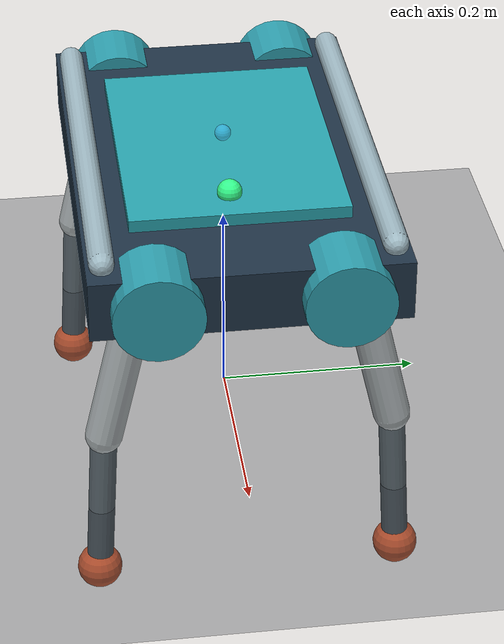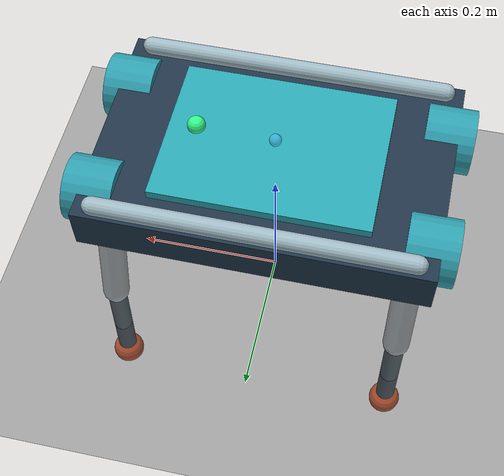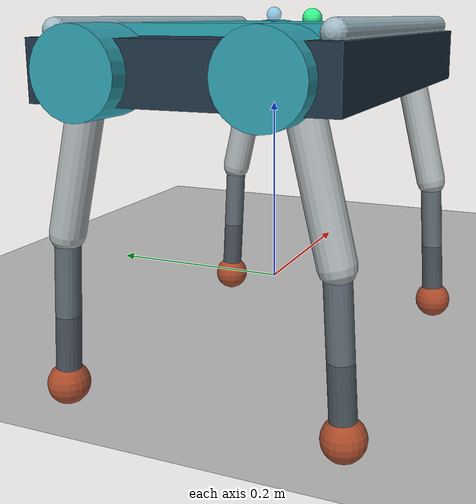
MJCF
<mujoco model="mujica-solo12-informed">
  <compiler angle="radian" autolimits="true"/>
  <option timestep="0.001" gravity="0 0 -9.81" integrator="implicitfast" cone="elliptic" impratio="100"/>
  <default>
    <joint damping="0.08" armature="0.0003645" limited="true"/>
    <geom friction="0.9 0.02 0.002" condim="3" solref="0.012 1"/>
    <motor ctrllimited="true" ctrlrange="-2.5 2.5"/>
    <default class="visual">
      <geom contype="0" conaffinity="0" group="2" mass="0"/>
    </default>
    <default class="collision">
      <geom group="3" mass="0" rgba="0.12 0.18 0.24 0.32"/>
    </default>
  </default>
  <worldbody>
    <light pos="0 -1 3" dir="0 0 -1"/>
    <geom name="floor" type="plane" size="5 5 0.1" rgba="0.13 0.15 0.18 1"/>
    <body name="torso" pos="0 0 0.245">
      <freejoint name="root"/>
      <inertial pos="-0.00082966 0.00000105 -0.00060210" mass="1.25123725" fullinertia="0.00266220 0.01388510 0.01605370 -0.00003684 -0.00001716 -0.00000009"/>
      <geom name="torso-collision" class="collision" type="box" size="0.225 0.15 0.03"/>
      <geom name="torso-shell" class="visual" type="box" size="0.225 0.15 0.03" rgba="0.12 0.20 0.27 1"/>
      <geom name="torso-top" class="visual" type="box" pos="0 0 0.034" size="0.14 0.105 0.008" rgba="0.16 0.64 0.68 1"/>
      <geom name="torso-rail-left" class="visual" type="capsule" fromto="-0.20 0.135 0.036 0.20 0.135 0.036" size="0.012" rgba="0.62 0.72 0.76 1"/>
      <geom name="torso-rail-right" class="visual" type="capsule" fromto="-0.20 -0.135 0.036 0.20 -0.135 0.036" size="0.012" rgba="0.62 0.72 0.76 1"/>
      <site name="imu-site" pos="0.10407 -0.00635 0.0454" size="0.012" rgba="0.2 1 0.55 1"/>
      <site name="payload-site" pos="0 0 0.05" size="0.008" rgba="0.25 0.75 1 0.5"/><!-- MUJICA_MOUNT:torso-payload -->
      <site name="foot-array-site" pos="0 0 0" size="0.005" rgba="0 0 0 0"/>

      <body name="leg-fl-haa" pos="0.2141 0.0875 0">
        <joint name="abd-fl" axis="1 0 0" range="-1.75 1.75"/>
        <inertial pos="-0.09407251 -0.00438935 0.00001384" mass="0.14196048" diaginertia="0.00002802 0.00038264 0.00038050"/>
        <geom name="pod-fl-collision" class="collision" type="sphere" size="0.042"/>
        <geom name="pod-fl" class="visual" type="cylinder" size="0.043 0.032" quat="0.707107 0 0.707107 0" rgba="0.18 0.62 0.68 1"/>
        <body name="leg-fl-hfe" pos="-0.0195 0.014 0">
          <joint name="hip-fl" axis="0 1 0" range="-2.75 2.75"/>
          <inertial pos="0.00001530 0.01767640 -0.07838230" mass="0.14737324" diaginertia="0.00041540 0.00041637 0.00002982"/>
          <geom name="upper-fl-collision" class="collision" type="capsule" fromto="0 0 0 0 0.03745 -0.16" size="0.019"/>
          <geom name="upper-fl" class="visual" type="capsule" fromto="0 0 0 0 0.03745 -0.16" size="0.018" rgba="0.70 0.73 0.74 1"/>
          <body name="leg-fl-kfe" pos="0 0.03745 -0.16">
            <joint name="knee-fl" axis="0 1 0" range="-2.75 2.75"/>
            <inertial pos="0 0.00776716 -0.07003876" mass="0.02318294" diaginertia="0.00008508 0.00008580 0.00000139"/>
            <geom name="lower-fl-collision" class="collision" type="capsule" fromto="0 0 0 0 0.009 -0.16" size="0.014"/>
            <geom name="lower-fl" class="visual" type="capsule" fromto="0 0 0 0 0.009 -0.16" size="0.013" rgba="0.37 0.42 0.45 1"/>
            <geom name="foot-fl" type="sphere" pos="0 0.009 -0.16" size="0.022" mass="0" rgba="0.92 0.38 0.19 1"/>
            <site name="foot-fl-site" pos="0 0.009 -0.16" size="0.026" rgba="1 0.2 0.2 0.22"/>
          </body>
        </body>
      </body>

      <body name="leg-fr-haa" pos="0.2141 -0.0875 0">
        <joint name="abd-fr" axis="1 0 0" range="-1.75 1.75"/>
        <inertial pos="-0.09407251 0.00438935 -0.00001384" mass="0.14196048" diaginertia="0.00002802 0.00038264 0.00038050"/>
        <geom name="pod-fr-collision" class="collision" type="sphere" size="0.042"/>
        <geom name="pod-fr" class="visual" type="cylinder" size="0.043 0.032" quat="0.707107 0 0.707107 0" rgba="0.18 0.62 0.68 1"/>
        <body name="leg-fr-hfe" pos="-0.0195 -0.014 0">
          <joint name="hip-fr" axis="0 1 0" range="-2.75 2.75"/>
          <inertial pos="-0.00001530 -0.01767640 -0.07838230" mass="0.14737324" diaginertia="0.00041540 0.00041637 0.00002982"/>
          <geom name="upper-fr-collision" class="collision" type="capsule" fromto="0 0 0 0 -0.03745 -0.16" size="0.019"/>
          <geom name="upper-fr" class="visual" type="capsule" fromto="0 0 0 0 -0.03745 -0.16" size="0.018" rgba="0.70 0.73 0.74 1"/>
          <body name="leg-fr-kfe" pos="0 -0.03745 -0.16">
            <joint name="knee-fr" axis="0 1 0" range="-2.75 2.75"/>
            <inertial pos="0 -0.00776716 -0.07003876" mass="0.02318294" diaginertia="0.00008508 0.00008580 0.00000139"/>
            <geom name="lower-fr-collision" class="collision" type="capsule" fromto="0 0 0 0 -0.009 -0.16" size="0.014"/>
            <geom name="lower-fr" class="visual" type="capsule" fromto="0 0 0 0 -0.009 -0.16" size="0.013" rgba="0.37 0.42 0.45 1"/>
            <geom name="foot-fr" type="sphere" pos="0 -0.009 -0.16" size="0.022" mass="0" rgba="0.92 0.38 0.19 1"/>
            <site name="foot-fr-site" pos="0 -0.009 -0.16" size="0.026" rgba="1 0.2 0.2 0.22"/>
          </body>
        </body>
      </body>

      <body name="leg-rl-haa" pos="-0.2141 0.0875 0">
        <joint name="abd-rl" axis="1 0 0" range="-1.75 1.75"/>
        <inertial pos="0.09407251 -0.00438935 -0.00001384" mass="0.14196048" diaginertia="0.00002802 0.00038264 0.00038050"/>
        <geom name="pod-rl-collision" class="collision" type="sphere" size="0.042"/>
        <geom name="pod-rl" class="visual" type="cylinder" size="0.043 0.032" quat="0.707107 0 0.707107 0" rgba="0.18 0.62 0.68 1"/>
        <body name="leg-rl-hfe" pos="0.0195 0.014 0">
          <joint name="hip-rl" axis="0 1 0" range="-2.75 2.75"/>
          <inertial pos="0.00001530 0.01767640 -0.07838230" mass="0.14737324" diaginertia="0.00041540 0.00041637 0.00002982"/>
          <geom name="upper-rl-collision" class="collision" type="capsule" fromto="0 0 0 0 0.03745 -0.16" size="0.019"/>
          <geom name="upper-rl" class="visual" type="capsule" fromto="0 0 0 0 0.03745 -0.16" size="0.018" rgba="0.70 0.73 0.74 1"/>
          <body name="leg-rl-kfe" pos="0 0.03745 -0.16">
            <joint name="knee-rl" axis="0 1 0" range="-2.75 2.75"/>
            <inertial pos="0 0.00776716 -0.07003876" mass="0.02318294" diaginertia="0.00008508 0.00008580 0.00000139"/>
            <geom name="lower-rl-collision" class="collision" type="capsule" fromto="0 0 0 0 0.009 -0.16" size="0.014"/>
            <geom name="lower-rl" class="visual" type="capsule" fromto="0 0 0 0 0.009 -0.16" size="0.013" rgba="0.37 0.42 0.45 1"/>
            <geom name="foot-rl" type="sphere" pos="0 0.009 -0.16" size="0.022" mass="0" rgba="0.92 0.38 0.19 1"/>
            <site name="foot-rl-site" pos="0 0.009 -0.16" size="0.026" rgba="1 0.2 0.2 0.22"/>
          </body>
        </body>
      </body>

      <body name="leg-rr-haa" pos="-0.2141 -0.0875 0">
        <joint name="abd-rr" axis="1 0 0" range="-1.75 1.75"/>
        <inertial pos="0.09407251 0.00438935 0.00001384" mass="0.14196048" diaginertia="0.00002802 0.00038264 0.00038050"/>
        <geom name="pod-rr-collision" class="collision" type="sphere" size="0.042"/>
        <geom name="pod-rr" class="visual" type="cylinder" size="0.043 0.032" quat="0.707107 0 0.707107 0" rgba="0.18 0.62 0.68 1"/>
        <body name="leg-rr-hfe" pos="0.0195 -0.014 0">
          <joint name="hip-rr" axis="0 1 0" range="-2.75 2.75"/>
          <inertial pos="-0.00001530 -0.01767640 -0.07838230" mass="0.14737324" diaginertia="0.00041540 0.00041637 0.00002982"/>
          <geom name="upper-rr-collision" class="collision" type="capsule" fromto="0 0 0 0 -0.03745 -0.16" size="0.019"/>
          <geom name="upper-rr" class="visual" type="capsule" fromto="0 0 0 0 -0.03745 -0.16" size="0.018" rgba="0.70 0.73 0.74 1"/>
          <body name="leg-rr-kfe" pos="0 -0.03745 -0.16">
            <joint name="knee-rr" axis="0 1 0" range="-2.75 2.75"/>
            <inertial pos="0 -0.00776716 -0.07003876" mass="0.02318294" diaginertia="0.00008508 0.00008580 0.00000139"/>
            <geom name="lower-rr-collision" class="collision" type="capsule" fromto="0 0 0 0 -0.009 -0.16" size="0.014"/>
            <geom name="lower-rr" class="visual" type="capsule" fromto="0 0 0 0 -0.009 -0.16" size="0.013" rgba="0.37 0.42 0.45 1"/>
            <geom name="foot-rr" type="sphere" pos="0 -0.009 -0.16" size="0.022" mass="0" rgba="0.92 0.38 0.19 1"/>
            <site name="foot-rr-site" pos="0 -0.009 -0.16" size="0.026" rgba="1 0.2 0.2 0.22"/>
          </body>
        </body>
      </body>
    </body>
  </worldbody>
  <contact>
    <!-- Each upper leg leaves the torso through its hip pod. This intentional
         assembly overlap is not a physical self-contact surface. -->
    <exclude body1="torso" body2="leg-fl-hfe"/>
    <exclude body1="torso" body2="leg-fr-hfe"/>
    <exclude body1="torso" body2="leg-rl-hfe"/>
    <exclude body1="torso" body2="leg-rr-hfe"/>
  </contact>
  <!-- MUJICA_COMPONENTS -->
  <actuator>
    <motor name="abd-fl-motor" joint="abd-fl"/><motor name="hip-fl-motor" joint="hip-fl"/><motor name="knee-fl-motor" joint="knee-fl"/>
    <motor name="abd-fr-motor" joint="abd-fr"/><motor name="hip-fr-motor" joint="hip-fr"/><motor name="knee-fr-motor" joint="knee-fr"/>
    <motor name="abd-rl-motor" joint="abd-rl"/><motor name="hip-rl-motor" joint="hip-rl"/><motor name="knee-rl-motor" joint="knee-rl"/>
    <motor name="abd-rr-motor" joint="abd-rr"/><motor name="hip-rr-motor" joint="hip-rr"/><motor name="knee-rr-motor" joint="knee-rr"/>
  </actuator>
  <keyframe>
    <key name="home" qpos="0 0 0.245 1 0 0 0 0 0.8 -1.6 0 0.8 -1.6 0 -0.8 1.6 0 -0.8 1.6"/>
  </keyframe>
</mujoco>
